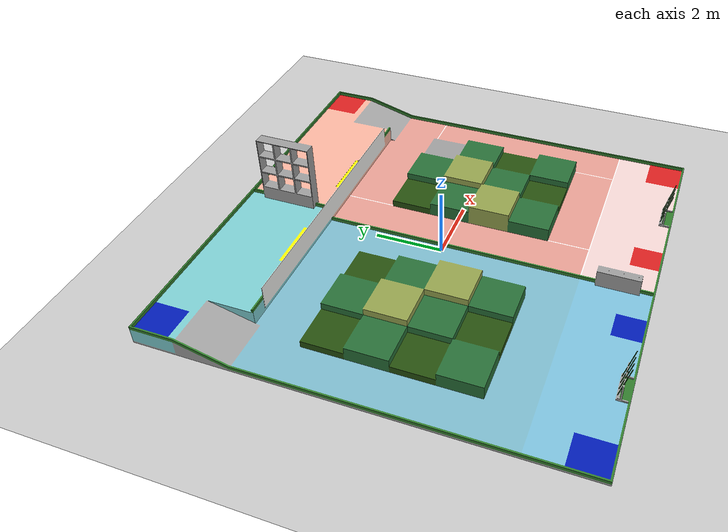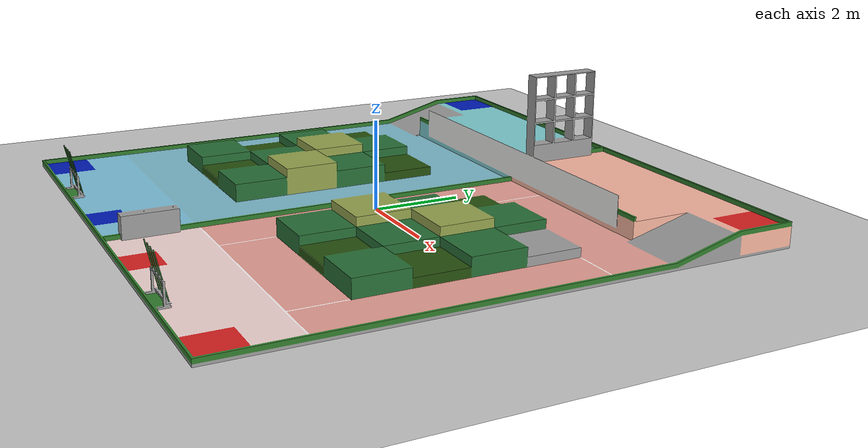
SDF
<?xml version="1.0" ?>
<sdf version="1.8">
  <world name="robocon_2026">
    <physics name="1ms" type="ignored">
      <max_step_size>0.001</max_step_size>
      <real_time_factor>1.0</real_time_factor>
    </physics>

    <plugin filename="gz-sim-physics-system" name="gz::sim::systems::Physics" />
    <plugin filename="gz-sim-user-commands-system" name="gz::sim::systems::UserCommands" />
    <plugin filename="gz-sim-scene-broadcaster-system" name="gz::sim::systems::SceneBroadcaster" />

    <include>
      <uri>https://fuel.gazebosim.org/1.0/OpenRobotics/models/Sun</uri>
    </include>

    <include>
      <uri>https://fuel.gazebosim.org/1.0/OpenRobotics/models/Ground Plane</uri>
    </include>

    <model name="san_thi_dau">
      <static>false</static>
      <pose>0 0 0.2 0 0 0</pose>
      <link name="link">
        <inertial>
          <mass>1000</mass>
          <inertia>
            <ixx>1666.67</ixx><ixy>0</ixy><ixz>0</ixz>
            <iyy>1666.67</iyy><iyz>0</iyz>
            <izz>3333.33</izz>
          </inertia>
        </inertial>
        <visual name="visual">
          <geometry>
            <mesh>
              <uri>file:///home/du/Desktop/RBC2026/cad/game_field/game_field.dae</uri>
            </mesh>
          </geometry>
        </visual>
        <collision name="collision">
          <geometry>
            <mesh>
              <uri>file:///home/du/Desktop/RBC2026/cad/game_field/game_field.dae</uri>
            </mesh>
          </geometry>
        </collision>
      </link>
    </model>
  </world>
</sdf>
